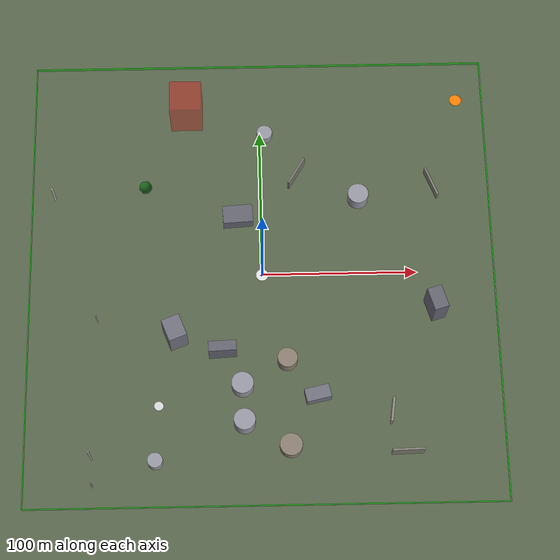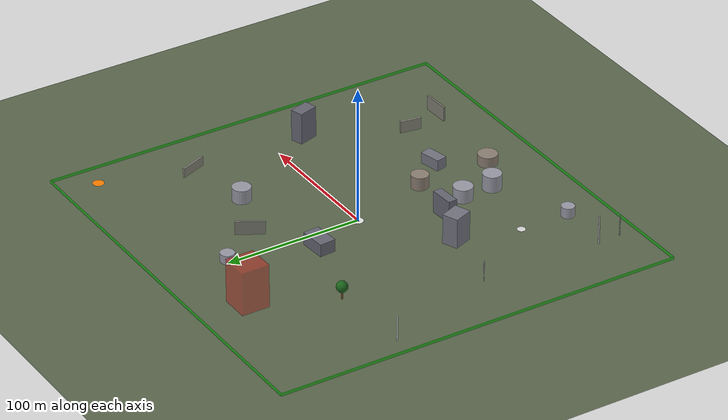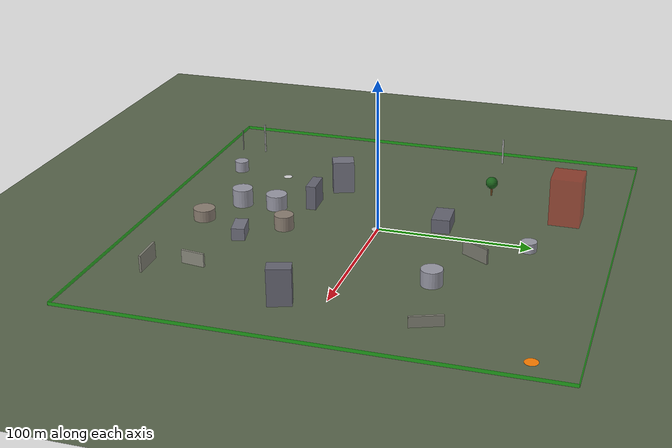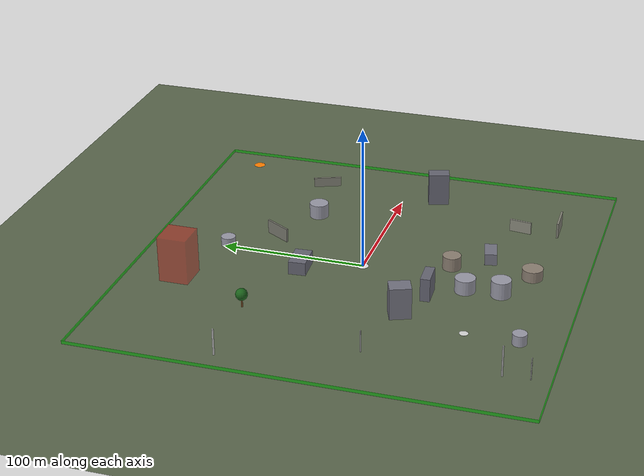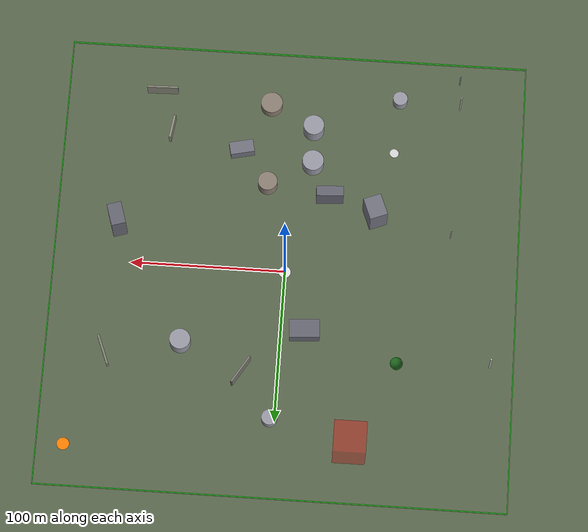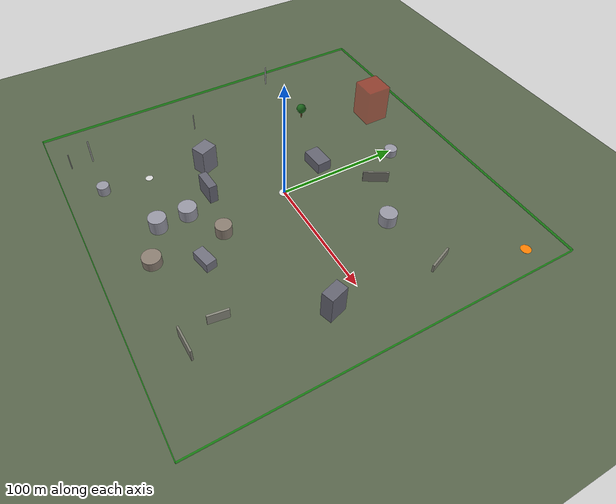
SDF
<?xml version="1.0" ?>
<sdf version="1.9">
  <!--
  Generated World: training_variant_002
  Seed: 44
  Difficulty: medium
  Obstacles: 21
  NFZs: 1
  Generated: 2025-12-27T10:39:35.531133
  Generator: Flyby F-11 World Generator v1.0.0
-->
  <world name="training_variant_002">
    <physics name="training_physics" type="ode">
      <max_step_size>0.001</max_step_size>
      <real_time_factor>1.0</real_time_factor>
      <real_time_update_rate>1000</real_time_update_rate>
      <ode>
        <solver>
          <type>quick</type>
          <iters>50</iters>
          <sor>1.3</sor>
        </solver>
        <constraints>
          <cfm>0.0</cfm>
          <erp>0.2</erp>
        </constraints>
      </ode>
    </physics>
    <plugin filename="gz-sim-physics-system" name="gz::sim::systems::Physics"/>
    <plugin filename="gz-sim-sensors-system" name="gz::sim::systems::Sensors">
      <render_engine>ogre2</render_engine>
    </plugin>
    <plugin filename="gz-sim-scene-broadcaster-system" name="gz::sim::systems::SceneBroadcaster"/>
    <plugin filename="gz-sim-user-commands-system" name="gz::sim::systems::UserCommands"/>
    <plugin filename="gz-sim-imu-system" name="gz::sim::systems::Imu"/>
    <plugin filename="gz-sim-air-pressure-system" name="gz::sim::systems::AirPressure"/>
    <plugin filename="gz-sim-magnetometer-system" name="gz::sim::systems::Magnetometer"/>
    <plugin filename="gz-sim-navsat-system" name="gz::sim::systems::NavSat"/>
    <plugin filename="gz-sim-contact-system" name="gz::sim::systems::Contact"/>
    <plugin filename="gz-sim-wind-effects-system" name="gz::sim::systems::WindEffects">
      <force_approximation_scaling_factor>1.0</force_approximation_scaling_factor>
    </plugin>
    <atmosphere type="adiabatic">
      <temperature>288.15</temperature>
      <pressure>101325</pressure>
      <mass_density>1.225</mass_density>
    </atmosphere>
    <wind>
      <linear_velocity>1.5374930586688311 -1.8695231134839818 0</linear_velocity>
    </wind>
    <spherical_coordinates>
      <surface_model>EARTH_WGS84</surface_model>
      <world_frame_orientation>ENU</world_frame_orientation>
      <latitude_deg>33.3853</latitude_deg>
      <longitude_deg>-117.5653</longitude_deg>
      <elevation>100</elevation>
      <heading_deg>0</heading_deg>
    </spherical_coordinates>
    <scene>
      <ambient>0.5 0.5 0.52 1</ambient>
      <background>0.6 0.6 0.65 1</background>
      <shadows>true</shadows>
      <grid>false</grid>
    </scene>
    <light type="directional" name="sun">
      <cast_shadows>true</cast_shadows>
      <pose>0 0 100 0 0 0</pose>
      <diffuse>0.5 0.5 0.55 1</diffuse>
      <specular>0.05 0.05 0.05 1</specular>
      <attenuation>
        <range>1000</range>
        <constant>0.9</constant>
        <linear>0.01</linear>
        <quadratic>0.001</quadratic>
      </attenuation>
      <direction>-0.3 0.0 -0.95</direction>
    </light>
    <model name="ground_plane">
      <static>true</static>
      <link name="link">
        <collision name="collision">
          <geometry>
            <plane>
              <normal>0 0 1</normal>
              <size>500 500</size>
            </plane>
          </geometry>
          <surface>
            <friction>
              <ode>
                <mu>100</mu>
                <mu2>50</mu2>
              </ode>
            </friction>
          </surface>
        </collision>
        <visual name="visual">
          <geometry>
            <plane>
              <normal>0 0 1</normal>
              <size>500 500</size>
            </plane>
          </geometry>
          <material>
            <ambient>0.35 0.4 0.3 1</ambient>
            <diffuse>0.35 0.4 0.3 1</diffuse>
          </material>
        </visual>
      </link>
    </model>
    <model name="geofence_north">
      <static>true</static>
      <pose>0 150.0 1 0 0 0</pose>
      <link name="link">
        <visual name="visual">
          <geometry>
            <box>
              <size>300.0 0.5 2</size>
            </box>
          </geometry>
          <material>
            <ambient>0 0.8 0 0.6</ambient>
            <diffuse>0 0.8 0 0.6</diffuse>
            <emissive>0 0.2 0 1</emissive>
          </material>
        </visual>
      </link>
    </model>
    <model name="geofence_south">
      <static>true</static>
      <pose>0 -150.0 1 0 0 0</pose>
      <link name="link">
        <visual name="visual">
          <geometry>
            <box>
              <size>300.0 0.5 2</size>
            </box>
          </geometry>
          <material>
            <ambient>0 0.8 0 0.6</ambient>
            <diffuse>0 0.8 0 0.6</diffuse>
            <emissive>0 0.2 0 1</emissive>
          </material>
        </visual>
      </link>
    </model>
    <model name="geofence_east">
      <static>true</static>
      <pose>150.0 0 1 0 0 0</pose>
      <link name="link">
        <visual name="visual">
          <geometry>
            <box>
              <size>0.5 300.0 2</size>
            </box>
          </geometry>
          <material>
            <ambient>0 0.8 0 0.6</ambient>
            <diffuse>0 0.8 0 0.6</diffuse>
            <emissive>0 0.2 0 1</emissive>
          </material>
        </visual>
      </link>
    </model>
    <model name="geofence_west">
      <static>true</static>
      <pose>-150.0 0 1 0 0 0</pose>
      <link name="link">
        <visual name="visual">
          <geometry>
            <box>
              <size>0.5 300.0 2</size>
            </box>
          </geometry>
          <material>
            <ambient>0 0.8 0 0.6</ambient>
            <diffuse>0 0.8 0 0.6</diffuse>
            <emissive>0 0.2 0 1</emissive>
          </material>
        </visual>
      </link>
    </model>
    <model name="nfz_1_volume">
      <static>true</static>
      <pose>-48.37870485705558 113.77372778238947 16.024593673651783 0 0 0</pose>
      <link name="link">
        <visual name="visual">
          <geometry>
            <box>
              <size>20.689476249316183 20.284889272765195 32.049187347303565</size>
            </box>
          </geometry>
          <material>
            <ambient>1 0 0 0.35000000000000003</ambient>
            <diffuse>1 0 0 0.35000000000000003</diffuse>
          </material>
        </visual>
      </link>
    </model>
    <model name="obstacle_pole_0">
      <static>true</static>
      <pose>-106.77425353760489 -136.8122749949426 7.645486266340555 0 0 0.0</pose>
      <link name="link">
        <visual name="visual">
          <geometry>
            <cylinder>
              <radius>0.367547856173444</radius>
              <length>15.29097253268111</length>
            </cylinder>
          </geometry>
          <material>
            <ambient>0.65 0.65 0.65 1.0</ambient>
            <diffuse>0.65 0.65 0.65 1.0</diffuse>
          </material>
        </visual>
        <collision name="collision">
          <geometry>
            <cylinder>
              <radius>0.367547856173444</radius>
              <length>15.29097253268111</length>
            </cylinder>
          </geometry>
        </collision>
      </link>
    </model>
    <model name="obstacle_wall_1">
      <static>true</static>
      <pose>23.629028559386313 69.09651762322076 4.902040966863034 0 0 1.0245357960027663</pose>
      <link name="link">
        <visual name="visual">
          <geometry>
            <box>
              <size>20.332291236835673 1.3029825366549956 9.804081933726067</size>
            </box>
          </geometry>
          <material>
            <ambient>0.48 0.48 0.44 1.0</ambient>
            <diffuse>0.48 0.48 0.44 1.0</diffuse>
          </material>
        </visual>
        <collision name="collision">
          <geometry>
            <box>
              <size>20.332291236835673 1.3029825366549956 9.804081933726067</size>
            </box>
          </geometry>
        </collision>
      </link>
    </model>
    <model name="obstacle_pole_2">
      <static>true</static>
      <pose>-107.77985705916026 -119.43124908642403 10.586099779570416 0 0 0.0</pose>
      <link name="link">
        <visual name="visual">
          <geometry>
            <cylinder>
              <radius>0.5524568690718628</radius>
              <length>21.172199559140832</length>
            </cylinder>
          </geometry>
          <material>
            <ambient>0.65 0.65 0.65 1.0</ambient>
            <diffuse>0.65 0.65 0.65 1.0</diffuse>
          </material>
        </visual>
        <collision name="collision">
          <geometry>
            <cylinder>
              <radius>0.5524568690718628</radius>
              <length>21.172199559140832</length>
            </cylinder>
          </geometry>
        </collision>
      </link>
    </model>
    <model name="obstacle_building_3">
      <static>true</static>
      <pose>-55.83528096974935 -41.27354958363675 10.98552767739686 0 0 0.3748555976433227</pose>
      <link name="link">
        <visual name="visual">
          <geometry>
            <box>
              <size>11.785141596888023 14.488061157076453 21.97105535479372</size>
            </box>
          </geometry>
          <material>
            <ambient>0.45 0.45 0.5 1.0</ambient>
            <diffuse>0.45 0.45 0.5 1.0</diffuse>
          </material>
        </visual>
        <collision name="collision">
          <geometry>
            <box>
              <size>11.785141596888023 14.488061157076453 21.97105535479372</size>
            </box>
          </geometry>
        </collision>
      </link>
    </model>
    <model name="obstacle_tank_4">
      <static>true</static>
      <pose>-68.17336040454316 -121.93617621897826 3.7750406059723254 0 0 0.0</pose>
      <link name="link">
        <visual name="visual">
          <geometry>
            <cylinder>
              <radius>4.754372660220939</radius>
              <length>7.550081211944651</length>
            </cylinder>
          </geometry>
          <material>
            <ambient>0.6 0.6 0.65 1.0</ambient>
            <diffuse>0.6 0.6 0.65 1.0</diffuse>
          </material>
        </visual>
        <collision name="collision">
          <geometry>
            <cylinder>
              <radius>4.754372660220939</radius>
              <length>7.550081211944651</length>
            </cylinder>
          </geometry>
        </collision>
      </link>
    </model>
    <model name="obstacle_tank_5">
      <static>true</static>
      <pose>63.60276567910543 51.90402234131366 5.129585266958927 0 0 0.0</pose>
      <link name="link">
        <visual name="visual">
          <geometry>
            <cylinder>
              <radius>6.719444496523292</radius>
              <length>10.259170533917853</length>
            </cylinder>
          </geometry>
          <material>
            <ambient>0.6 0.6 0.65 1.0</ambient>
            <diffuse>0.6 0.6 0.65 1.0</diffuse>
          </material>
        </visual>
        <collision name="collision">
          <geometry>
            <cylinder>
              <radius>6.719444496523292</radius>
              <length>10.259170533917853</length>
            </cylinder>
          </geometry>
        </collision>
      </link>
    </model>
    <model name="obstacle_wall_6">
      <static>true</static>
      <pose>79.85614227506386 -92.40484953225234 4.360888896658427 0 0 1.4312232216172234</pose>
      <link name="link">
        <visual name="visual">
          <geometry>
            <box>
              <size>15.542711596617291 1.4708781661879882 8.721777793316853</size>
            </box>
          </geometry>
          <material>
            <ambient>0.55 0.55 0.5 1.0</ambient>
            <diffuse>0.55 0.55 0.5 1.0</diffuse>
          </material>
        </visual>
        <collision name="collision">
          <geometry>
            <box>
              <size>15.542711596617291 1.4708781661879882 8.721777793316853</size>
            </box>
          </geometry>
        </collision>
      </link>
    </model>
    <model name="obstacle_wall_7">
      <static>true</static>
      <pose>88.16120854389689 -118.54098788304086 5.458841867149184 0 0 0.02918510387105424</pose>
      <link name="link">
        <visual name="visual">
          <geometry>
            <box>
              <size>20.256329960564535 1.3459073649067603 10.917683734298368</size>
            </box>
          </geometry>
          <material>
            <ambient>0.5 0.5 0.45 1.0</ambient>
            <diffuse>0.5 0.5 0.45 1.0</diffuse>
          </material>
        </visual>
        <collision name="collision">
          <geometry>
            <box>
              <size>20.256329960564535 1.3459073649067603 10.917683734298368</size>
            </box>
          </geometry>
        </collision>
      </link>
    </model>
    <model name="obstacle_tank_8">
      <static>true</static>
      <pose>14.971624571261344 -58.354476264154414 4.811488747152471 0 0 0.0</pose>
      <link name="link">
        <visual name="visual">
          <geometry>
            <cylinder>
              <radius>6.320152364774204</radius>
              <length>9.622977494304942</length>
            </cylinder>
          </geometry>
          <material>
            <ambient>0.55 0.5 0.45 1.0</ambient>
            <diffuse>0.55 0.5 0.45 1.0</diffuse>
          </material>
        </visual>
        <collision name="collision">
          <geometry>
            <cylinder>
              <radius>6.320152364774204</radius>
              <length>9.622977494304942</length>
            </cylinder>
          </geometry>
        </collision>
      </link>
    </model>
    <model name="obstacle_tree_9">
      <static>true</static>
      <pose>-75.08199177814828 58.907460577634254 0 0 0 0.0</pose>
      <link name="link">
        <visual name="trunk">
          <pose>0 0 3.337022129551839 0 0 0</pose>
          <geometry>
            <cylinder>
              <radius>0.6213593455661517</radius>
              <length>6.674044259103678</length>
            </cylinder>
          </geometry>
          <material>
            <ambient>0.42 0.27 0.12 1.0</ambient>
            <diffuse>0.42 0.27 0.12 1.0</diffuse>
          </material>
        </visual>
        <visual name="canopy">
          <pose>0 0 9.123741832677826 0 0 0</pose>
          <geometry>
            <sphere>
              <radius>4.082829289290245</radius>
            </sphere>
          </geometry>
          <material>
            <ambient>0.1 0.38 0.1 1.0</ambient>
            <diffuse>0.1 0.38 0.1 1.0</diffuse>
          </material>
        </visual>
        <collision name="collision">
          <pose>0 0 7.419851418842084 0 0 0</pose>
          <geometry>
            <cylinder>
              <radius>4.082829289290245</radius>
              <length>14.839702837684168</length>
            </cylinder>
          </geometry>
        </collision>
      </link>
    </model>
    <model name="obstacle_wall_10">
      <static>true</static>
      <pose>112.3931202087272 61.108369901309004 3.4280473257476136 0 0 1.9466472887593191</pose>
      <link name="link">
        <visual name="visual">
          <geometry>
            <box>
              <size>20.13800627996264 1.4739453205651758 6.856094651495227</size>
            </box>
          </geometry>
          <material>
            <ambient>0.5 0.5 0.45 1.0</ambient>
            <diffuse>0.5 0.5 0.45 1.0</diffuse>
          </material>
        </visual>
        <collision name="collision">
          <geometry>
            <box>
              <size>20.13800627996264 1.4739453205651758 6.856094651495227</size>
            </box>
          </geometry>
        </collision>
      </link>
    </model>
    <model name="obstacle_building_11">
      <static>true</static>
      <pose>33.42188561936973 -81.22475358764804 4.057283600416947 0 0 0.21941973252824962</pose>
      <link name="link">
        <visual name="visual">
          <geometry>
            <box>
              <size>15.743792420303244 8.448441830798265 8.114567200833894</size>
            </box>
          </geometry>
          <material>
            <ambient>0.45 0.45 0.5 1.0</ambient>
            <diffuse>0.45 0.45 0.5 1.0</diffuse>
          </material>
        </visual>
        <collision name="collision">
          <geometry>
            <box>
              <size>15.743792420303244 8.448441830798265 8.114567200833894</size>
            </box>
          </geometry>
        </collision>
      </link>
    </model>
    <model name="obstacle_tank_12">
      <static>true</static>
      <pose>3.3020952379052915 98.49722546279594 3.1946289538572468 0 0 0.0</pose>
      <link name="link">
        <visual name="visual">
          <geometry>
            <cylinder>
              <radius>5.050256728338633</radius>
              <length>6.3892579077144935</length>
            </cylinder>
          </geometry>
          <material>
            <ambient>0.6 0.6 0.65 1.0</ambient>
            <diffuse>0.6 0.6 0.65 1.0</diffuse>
          </material>
        </visual>
        <collision name="collision">
          <geometry>
            <cylinder>
              <radius>5.050256728338633</radius>
              <length>6.3892579077144935</length>
            </cylinder>
          </geometry>
        </collision>
      </link>
    </model>
    <model name="obstacle_building_13">
      <static>true</static>
      <pose>-25.9379080921764 -51.92250005754208 8.17467020115982 0 0 0.057155988850722844</pose>
      <link name="link">
        <visual name="visual">
          <geometry>
            <box>
              <size>17.571812405078212 6.588728871623037 16.34934040231964</size>
            </box>
          </geometry>
          <material>
            <ambient>0.4 0.4 0.45 1.0</ambient>
            <diffuse>0.4 0.4 0.45 1.0</diffuse>
          </material>
        </visual>
        <collision name="collision">
          <geometry>
            <box>
              <size>17.571812405078212 6.588728871623037 16.34934040231964</size>
            </box>
          </geometry>
        </collision>
      </link>
    </model>
    <model name="obstacle_building_14">
      <static>true</static>
      <pose>-15.217007390525978 39.36163955824571 4.6320609291561405 0 0 0.06615189903852556</pose>
      <link name="link">
        <visual name="visual">
          <geometry>
            <box>
              <size>19.32184083452765 11.915723772285167 9.264121858312281</size>
            </box>
          </geometry>
          <material>
            <ambient>0.4 0.4 0.45 1.0</ambient>
            <diffuse>0.4 0.4 0.45 1.0</diffuse>
          </material>
        </visual>
        <collision name="collision">
          <geometry>
            <box>
              <size>19.32184083452765 11.915723772285167 9.264121858312281</size>
            </box>
          </geometry>
        </collision>
      </link>
    </model>
    <model name="obstacle_tank_15">
      <static>true</static>
      <pose>15.96504715570046 -113.50861349144019 3.8357840347078227 0 0 0.0</pose>
      <link name="link">
        <visual name="visual">
          <geometry>
            <cylinder>
              <radius>7.082782332106968</radius>
              <length>7.671568069415645</length>
            </cylinder>
          </geometry>
          <material>
            <ambient>0.55 0.5 0.45 1.0</ambient>
            <diffuse>0.55 0.5 0.45 1.0</diffuse>
          </material>
        </visual>
        <collision name="collision">
          <geometry>
            <cylinder>
              <radius>7.082782332106968</radius>
              <length>7.671568069415645</length>
            </cylinder>
          </geometry>
        </collision>
      </link>
    </model>
    <model name="obstacle_tank_16">
      <static>true</static>
      <pose>-12.622297025629436 -98.14342726343574 5.967535859581146 0 0 0.0</pose>
      <link name="link">
        <visual name="visual">
          <geometry>
            <cylinder>
              <radius>6.767762814151065</radius>
              <length>11.935071719162291</length>
            </cylinder>
          </geometry>
          <material>
            <ambient>0.6 0.6 0.65 1.0</ambient>
            <diffuse>0.6 0.6 0.65 1.0</diffuse>
          </material>
        </visual>
        <collision name="collision">
          <geometry>
            <cylinder>
              <radius>6.767762814151065</radius>
              <length>11.935071719162291</length>
            </cylinder>
          </geometry>
        </collision>
      </link>
    </model>
    <model name="obstacle_building_17">
      <static>true</static>
      <pose>110.05273373534072 -25.011337047109095 11.763344263438434 0 0 0.30009427574819464</pose>
      <link name="link">
        <visual name="visual">
          <geometry>
            <box>
              <size>9.354304938236336 14.705428562528462 23.526688526876868</size>
            </box>
          </geometry>
          <material>
            <ambient>0.4 0.4 0.45 1.0</ambient>
            <diffuse>0.4 0.4 0.45 1.0</diffuse>
          </material>
        </visual>
        <collision name="collision">
          <geometry>
            <box>
              <size>9.354304938236336 14.705428562528462 23.526688526876868</size>
            </box>
          </geometry>
        </collision>
      </link>
    </model>
    <model name="obstacle_tank_18">
      <static>true</static>
      <pose>-13.572551056207914 -74.31619069488559 5.06019507738095 0 0 0.0</pose>
      <link name="link">
        <visual name="visual">
          <geometry>
            <cylinder>
              <radius>6.969641326432847</radius>
              <length>10.1203901547619</length>
            </cylinder>
          </geometry>
          <material>
            <ambient>0.6 0.6 0.65 1.0</ambient>
            <diffuse>0.6 0.6 0.65 1.0</diffuse>
          </material>
        </visual>
        <collision name="collision">
          <geometry>
            <cylinder>
              <radius>6.969641326432847</radius>
              <length>10.1203901547619</length>
            </cylinder>
          </geometry>
        </collision>
      </link>
    </model>
    <model name="obstacle_pole_19">
      <static>true</static>
      <pose>-134.96338177179052 54.74429456361699 9.168782841832826 0 0 0.0</pose>
      <link name="link">
        <visual name="visual">
          <geometry>
            <cylinder>
              <radius>0.5991975568348946</radius>
              <length>18.33756568366565</length>
            </cylinder>
          </geometry>
          <material>
            <ambient>0.75 0.75 0.75 1.0</ambient>
            <diffuse>0.75 0.75 0.75 1.0</diffuse>
          </material>
        </visual>
        <collision name="collision">
          <geometry>
            <cylinder>
              <radius>0.5991975568348946</radius>
              <length>18.33756568366565</length>
            </cylinder>
          </geometry>
        </collision>
      </link>
    </model>
    <model name="obstacle_pole_20">
      <static>true</static>
      <pose>-105.683478567457 -30.25982165126868 7.578234451905337 0 0 0.0</pose>
      <link name="link">
        <visual name="visual">
          <geometry>
            <cylinder>
              <radius>0.35638646753943054</radius>
              <length>15.156468903810675</length>
            </cylinder>
          </geometry>
          <material>
            <ambient>0.75 0.75 0.75 1.0</ambient>
            <diffuse>0.75 0.75 0.75 1.0</diffuse>
          </material>
        </visual>
        <collision name="collision">
          <geometry>
            <cylinder>
              <radius>0.35638646753943054</radius>
              <length>15.156468903810675</length>
            </cylinder>
          </geometry>
        </collision>
      </link>
    </model>
    <model name="lz_primary">
      <static>true</static>
      <pose>0 0 0.02 0 0 0</pose>
      <link name="link">
        <visual name="pad">
          <geometry>
            <cylinder>
              <radius>4.0</radius>
              <length>0.04</length>
            </cylinder>
          </geometry>
          <material>
            <ambient>0.9 0.9 0.9 1</ambient>
            <diffuse>0.9 0.9 0.9 1</diffuse>
          </material>
        </visual>
        <visual name="H_v">
          <pose>0 0 0.02 0 0 0</pose>
          <geometry>
            <box>
              <size>0.6 2.5 0.01</size>
            </box>
          </geometry>
          <material>
            <ambient>0 0 0.8 1</ambient>
            <diffuse>0 0 0.8 1</diffuse>
          </material>
        </visual>
        <visual name="H_h">
          <pose>0 0 0.02 0 0 0</pose>
          <geometry>
            <box>
              <size>2.5 0.6 0.01</size>
            </box>
          </geometry>
          <material>
            <ambient>0 0 0.8 1</ambient>
            <diffuse>0 0 0.8 1</diffuse>
          </material>
        </visual>
      </link>
    </model>
    <model name="lz_secondary">
      <static>true</static>
      <pose>-66.30599286261489 -86.067267611089 0.02 0 0 0</pose>
      <link name="link">
        <visual name="pad">
          <geometry>
            <cylinder>
              <radius>3.0</radius>
              <length>0.04</length>
            </cylinder>
          </geometry>
          <material>
            <ambient>0.85 0.85 0.85 1</ambient>
            <diffuse>0.85 0.85 0.85 1</diffuse>
          </material>
        </visual>
      </link>
    </model>
    <model name="lz_emergency">
      <static>true</static>
      <pose>132.74953131134714 122.86711266442421 0.02 0 0 0</pose>
      <link name="link">
        <visual name="pad">
          <geometry>
            <cylinder>
              <radius>4.0</radius>
              <length>0.04</length>
            </cylinder>
          </geometry>
          <material>
            <ambient>1 0.5 0 1</ambient>
            <diffuse>1 0.5 0 1</diffuse>
          </material>
        </visual>
      </link>
    </model>
    <include>
      <uri>model://iris_with_ardupilot</uri>
      <name>iris</name>
      <pose>0 0 0.5 0 0 0</pose>
    </include>
  </world>
</sdf>

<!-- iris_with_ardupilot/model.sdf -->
<sdf version="1.9">
  <model name="iris_with_ardupilot">
    <pose>0 0 0.2 0 0 0</pose>

    <link name="base_link">
      <inertial>
        <mass>1.5</mass>
        <inertia>
          <ixx>0.029125</ixx>
          <ixy>0</ixy>
          <ixz>0</ixz>
          <iyy>0.029125</iyy>
          <iyz>0</iyz>
          <izz>0.055225</izz>
        </inertia>
      </inertial>

      <visual name="body_visual">
        <geometry>
          <box>
            <size>0.47 0.47 0.11</size>
          </box>
        </geometry>
        <material>
          <ambient>0.2 0.2 0.2 1</ambient>
          <diffuse>0.2 0.2 0.2 1</diffuse>
        </material>
      </visual>

      <!-- Center marker for orientation (green = forward) -->
      <visual name="center_marker">
        <pose>0.15 0 0 0 0 0</pose>
        <geometry>
          <sphere>
            <radius>0.05</radius>
          </sphere>
        </geometry>
        <material>
          <ambient>0 1 0 1</ambient>
          <diffuse>0 1 0 1</diffuse>
        </material>
      </visual>

      <collision name="collision">
        <geometry>
          <box>
            <size>0.47 0.47 0.11</size>
          </box>
        </geometry>
      </collision>

      <!-- GPS/NavSat Sensor                -->
      <!-- Consumer-grade GPS accuracy      -->
      <sensor name="navsat_sensor" type="navsat">
        <always_on>1</always_on>
        <update_rate>10</update_rate>
        <topic>gps</topic>
        <navsat>
          <position_sensing>
            <horizontal>
              <noise type="gaussian">
                <mean>0.0</mean>
                <stddev>0.5</stddev>
              </noise>
            </horizontal>
            <vertical>
              <noise type="gaussian">
                <mean>0.0</mean>
                <stddev>1.0</stddev>
              </noise>
            </vertical>
          </position_sensing>
          <velocity_sensing>
            <horizontal>
              <noise type="gaussian">
                <mean>0.0</mean>
                <stddev>0.05</stddev>
              </noise>
            </horizontal>
            <vertical>
              <noise type="gaussian">
                <mean>0.0</mean>
                <stddev>0.1</stddev>
              </noise>
            </vertical>
          </velocity_sensing>
        </navsat>
      </sensor>

      <!-- Magnetometer Sensor              -->
      <!-- Earth magnetic field sensing     -->
      <!-- Declination: ~11.5 deg E (San Diego) -->
      <sensor name="magnetometer_sensor" type="magnetometer">
        <always_on>1</always_on>
        <update_rate>50</update_rate>
        <topic>magnetometer</topic>
        <magnetometer>
          <x>
            <noise type="gaussian">
              <mean>0</mean>
              <stddev>0.001</stddev>
              <bias_mean>0.00001</bias_mean>
              <bias_stddev>0.000002</bias_stddev>
            </noise>
          </x>
          <y>
            <noise type="gaussian">
              <mean>0</mean>
              <stddev>0.001</stddev>
              <bias_mean>0.00001</bias_mean>
              <bias_stddev>0.000002</bias_stddev>
            </noise>
          </y>
          <z>
            <noise type="gaussian">
              <mean>0</mean>
              <stddev>0.001</stddev>
              <bias_mean>0.00001</bias_mean>
              <bias_stddev>0.000002</bias_stddev>
            </noise>
          </z>
        </magnetometer>
      </sensor>

      <!-- Barometer Sensor                 -->
      <!-- Atmospheric pressure sensing     -->
      <!-- ~8.3 Pa per meter at sea level   -->
      <sensor name="air_pressure_sensor" type="air_pressure">
        <always_on>1</always_on>
        <update_rate>20</update_rate>
        <topic>air_pressure</topic>
        <air_pressure>
          <reference_altitude>0</reference_altitude>
          <pressure>
            <noise type="gaussian">
              <mean>0</mean>
              <stddev>10</stddev>
            </noise>
          </pressure>
        </air_pressure>
      </sensor>

    </link>

    <!-- Rotor 0 (Front Right, CW)        -->
    <link name="rotor_0">
      <pose>0.13 -0.22 0.023 0 0 0</pose>
      <inertial>
        <mass>0.005</mass>
        <inertia>
          <ixx>9.75e-07</ixx>
          <ixy>0</ixy>
          <ixz>0</ixz>
          <iyy>0.000166704</iyy>
          <iyz>0</iyz>
          <izz>0.000167604</izz>
        </inertia>
      </inertial>
      <visual name="visual">
        <geometry>
          <cylinder>
            <radius>0.128</radius>
            <length>0.005</length>
          </cylinder>
        </geometry>
        <material>
          <ambient>1 0 0 1</ambient>
          <diffuse>1 0 0 1</diffuse>
        </material>
      </visual>
    </link>

    <!-- Rotor 1 (Back Left, CW)          -->
    <link name="rotor_1">
      <pose>-0.13 0.2 0.023 0 0 0</pose>
      <inertial>
        <mass>0.005</mass>
        <inertia>
          <ixx>9.75e-07</ixx>
          <ixy>0</ixy>
          <ixz>0</ixz>
          <iyy>0.000166704</iyy>
          <iyz>0</iyz>
          <izz>0.000167604</izz>
        </inertia>
      </inertial>
      <visual name="visual">
        <geometry>
          <cylinder>
            <radius>0.128</radius>
            <length>0.005</length>
          </cylinder>
        </geometry>
        <material>
          <ambient>1 0 0 1</ambient>
          <diffuse>1 0 0 1</diffuse>
        </material>
      </visual>
    </link>

    <!-- Rotor 2 (Front Left, CCW)        -->
    <link name="rotor_2">
      <pose>0.13 0.22 0.023 0 0 0</pose>
      <inertial>
        <mass>0.005</mass>
        <inertia>
          <ixx>9.75e-07</ixx>
          <ixy>0</ixy>
          <ixz>0</ixz>
          <iyy>0.000166704</iyy>
          <iyz>0</iyz>
          <izz>0.000167604</izz>
        </inertia>
      </inertial>
      <visual name="visual">
        <geometry>
          <cylinder>
            <radius>0.128</radius>
            <length>0.005</length>
          </cylinder>
        </geometry>
        <material>
          <ambient>0 0 1 1</ambient>
          <diffuse>0 0 1 1</diffuse>
        </material>
      </visual>
    </link>

    <!-- Rotor 3 (Back Right, CCW)        -->
    <link name="rotor_3">
      <pose>-0.13 -0.2 0.023 0 0 0</pose>
      <inertial>
        <mass>0.005</mass>
        <inertia>
          <ixx>9.75e-07</ixx>
          <ixy>0</ixy>
          <ixz>0</ixz>
          <iyy>0.000166704</iyy>
          <iyz>0</iyz>
          <izz>0.000167604</izz>
        </inertia>
      </inertial>
      <visual name="visual">
        <geometry>
          <cylinder>
            <radius>0.128</radius>
            <length>0.005</length>
          </cylinder>
        </geometry>
        <material>
          <ambient>0 0 1 1</ambient>
          <diffuse>0 0 1 1</diffuse>
        </material>
      </visual>
    </link>

    <!-- Rotor joints -->
    <joint name="rotor_0_joint" type="revolute">
      <parent>base_link</parent>
      <child>rotor_0</child>
      <axis>
        <xyz>0 0 1</xyz>
        <limit>
          <lower>-1e16</lower>
          <upper>1e16</upper>
        </limit>
      </axis>
    </joint>

    <joint name="rotor_1_joint" type="revolute">
      <parent>base_link</parent>
      <child>rotor_1</child>
      <axis>
        <xyz>0 0 1</xyz>
        <limit>
          <lower>-1e16</lower>
          <upper>1e16</upper>
        </limit>
      </axis>
    </joint>

    <joint name="rotor_2_joint" type="revolute">
      <parent>base_link</parent>
      <child>rotor_2</child>
      <axis>
        <xyz>0 0 1</xyz>
        <limit>
          <lower>-1e16</lower>
          <upper>1e16</upper>
        </limit>
      </axis>
    </joint>

    <joint name="rotor_3_joint" type="revolute">
      <parent>base_link</parent>
      <child>rotor_3</child>
      <axis>
        <xyz>0 0 1</xyz>
        <limit>
          <lower>-1e16</lower>
          <upper>1e16</upper>
        </limit>
      </axis>
    </joint>

    <!-- IMU Sensor Link                  -->
    <!-- 250Hz MEMS IMU with noise        -->
    <link name="imu_link">
      <pose>0 0 0 0 0 0</pose>
      <inertial>
        <mass>0.001</mass>
        <inertia>
          <ixx>1e-05</ixx>
          <ixy>0</ixy>
          <ixz>0</ixz>
          <iyy>1e-05</iyy>
          <iyz>0</iyz>
          <izz>1e-05</izz>
        </inertia>
      </inertial>
      <sensor name="imu_sensor" type="imu">
        <always_on>1</always_on>
        <update_rate>250</update_rate>
        <topic>imu</topic>
        <imu>
          <angular_velocity>
            <x>
              <noise type="gaussian">
                <mean>0</mean>
                <stddev>0.009</stddev>
                <bias_mean>0.0001</bias_mean>
                <bias_stddev>0.00002</bias_stddev>
              </noise>
            </x>
            <y>
              <noise type="gaussian">
                <mean>0</mean>
                <stddev>0.009</stddev>
                <bias_mean>0.0001</bias_mean>
                <bias_stddev>0.00002</bias_stddev>
              </noise>
            </y>
            <z>
              <noise type="gaussian">
                <mean>0</mean>
                <stddev>0.009</stddev>
                <bias_mean>0.0001</bias_mean>
                <bias_stddev>0.00002</bias_stddev>
              </noise>
            </z>
          </angular_velocity>
          <linear_acceleration>
            <x>
              <noise type="gaussian">
                <mean>0</mean>
                <stddev>0.017</stddev>
                <bias_mean>0.001</bias_mean>
                <bias_stddev>0.0002</bias_stddev>
              </noise>
            </x>
            <y>
              <noise type="gaussian">
                <mean>0</mean>
                <stddev>0.017</stddev>
                <bias_mean>0.001</bias_mean>
                <bias_stddev>0.0002</bias_stddev>
              </noise>
            </y>
            <z>
              <noise type="gaussian">
                <mean>0</mean>
                <stddev>0.017</stddev>
                <bias_mean>0.001</bias_mean>
                <bias_stddev>0.0002</bias_stddev>
              </noise>
            </z>
          </linear_acceleration>
        </imu>
      </sensor>
    </link>

    <joint name="imu_joint" type="fixed">
      <parent>base_link</parent>
      <child>imu_link</child>
    </joint>

    <!-- Rangefinder Link                 -->
    <!-- Downward-facing lidar for AGL    -->
    <link name="rangefinder_link">
      <pose>0 0 -0.05 0 0 0</pose>
      <inertial>
        <mass>0.01</mass>
        <inertia>
          <ixx>1e-05</ixx>
          <ixy>0</ixy>
          <ixz>0</ixz>
          <iyy>1e-05</iyy>
          <iyz>0</iyz>
          <izz>1e-05</izz>
        </inertia>
      </inertial>
      <visual name="visual">
        <geometry>
          <cylinder>
            <radius>0.01</radius>
            <length>0.02</length>
          </cylinder>
        </geometry>
        <material>
          <ambient>0.5 0.5 0.5 1</ambient>
          <diffuse>0.5 0.5 0.5 1</diffuse>
        </material>
      </visual>
      <sensor name="rangefinder" type="gpu_lidar">
        <!-- Pointing straight down (pitch = -90 deg = -1.5708 rad) -->
        <pose>0 0 0 0 1.5708 0</pose>
        <always_on>1</always_on>
        <update_rate>20</update_rate>
        <topic>rangefinder</topic>
        <ray>
          <scan>
            <horizontal>
              <samples>1</samples>
              <resolution>1</resolution>
              <min_angle>0</min_angle>
              <max_angle>0</max_angle>
            </horizontal>
            <vertical>
              <samples>1</samples>
              <resolution>1</resolution>
              <min_angle>0</min_angle>
              <max_angle>0</max_angle>
            </vertical>
          </scan>
          <range>
            <min>0.1</min>
            <max>40.0</max>
            <resolution>0.01</resolution>
          </range>
          <noise>
            <type>gaussian</type>
            <mean>0</mean>
            <stddev>0.02</stddev>
          </noise>
        </ray>
        <visualize>false</visualize>
      </sensor>
    </link>

    <joint name="rangefinder_joint" type="fixed">
      <parent>base_link</parent>
      <child>rangefinder_link</child>
    </joint>

    <!-- ArduPilot Plugin                 -->
    <plugin filename="ArduPilotPlugin" name="ArduPilotPlugin">
      <!-- Network Configuration -->
      <fdm_addr>127.0.0.1</fdm_addr>
      <fdm_port_in>9002</fdm_port_in>
      <fdm_port_out>9003</fdm_port_out>
      <connectionTimeoutMaxCount>5</connectionTimeoutMaxCount>

      <!-- Simulation Settings -->
      <lock_step>1</lock_step>
      <have_32_channels>0</have_32_channels>

      <!-- Coordinate Transforms -->
      <modelXYZToAirplaneXForwardZDown>0 0 0 3.141593 0 0</modelXYZToAirplaneXForwardZDown>
      <gazeboXYZToNED>0 0 0 3.141593 0 0</gazeboXYZToNED>

      <!-- Sensor Reference -->
      <imuName>imu_link::imu_sensor</imuName>

      <!-- Control Channel 0: Front Right (CW) -->
      <control channel="0">
        <jointName>rotor_0_joint</jointName>
        <useForce>1</useForce>
        <multiplier>838</multiplier>
        <offset>-0.5</offset>
        <servo_min>1000</servo_min>
        <servo_max>2000</servo_max>
        <type>VELOCITY</type>
        <p_gain>0.20</p_gain>
        <i_gain>0</i_gain>
        <d_gain>0</d_gain>
        <i_max>0</i_max>
        <i_min>0</i_min>
        <cmd_max>2.5</cmd_max>
        <cmd_min>-2.5</cmd_min>
      </control>

      <!-- Control Channel 1: Back Left (CW) -->
      <control channel="1">
        <jointName>rotor_1_joint</jointName>
        <useForce>1</useForce>
        <multiplier>838</multiplier>
        <offset>-0.5</offset>
        <servo_min>1000</servo_min>
        <servo_max>2000</servo_max>
        <type>VELOCITY</type>
        <p_gain>0.20</p_gain>
        <i_gain>0</i_gain>
        <d_gain>0</d_gain>
        <i_max>0</i_max>
        <i_min>0</i_min>
        <cmd_max>2.5</cmd_max>
        <cmd_min>-2.5</cmd_min>
      </control>

      <!-- Control Channel 2: Front Left (CCW) -->
      <control channel="2">
        <jointName>rotor_2_joint</jointName>
        <useForce>1</useForce>
        <multiplier>838</multiplier>
        <offset>-0.5</offset>
        <servo_min>1000</servo_min>
        <servo_max>2000</servo_max>
        <type>VELOCITY</type>
        <p_gain>0.20</p_gain>
        <i_gain>0</i_gain>
        <d_gain>0</d_gain>
        <i_max>0</i_max>
        <i_min>0</i_min>
        <cmd_max>2.5</cmd_max>
        <cmd_min>-2.5</cmd_min>
      </control>

      <!-- Control Channel 3: Back Right (CCW) -->
      <control channel="3">
        <jointName>rotor_3_joint</jointName>
        <useForce>1</useForce>
        <multiplier>838</multiplier>
        <offset>-0.5</offset>
        <servo_min>1000</servo_min>
        <servo_max>2000</servo_max>
        <type>VELOCITY</type>
        <p_gain>0.20</p_gain>
        <i_gain>0</i_gain>
        <d_gain>0</d_gain>
        <i_max>0</i_max>
        <i_min>0</i_min>
        <cmd_max>2.5</cmd_max>
        <cmd_min>-2.5</cmd_min>
      </control>
    </plugin>

  </model>
</sdf>
